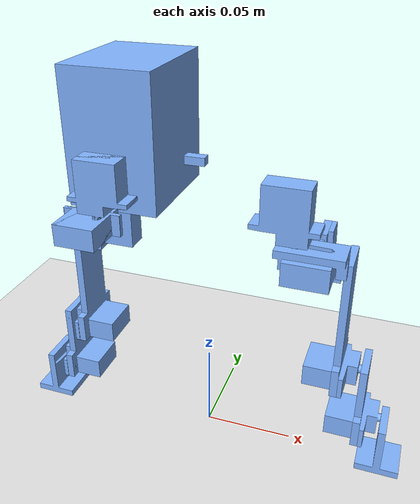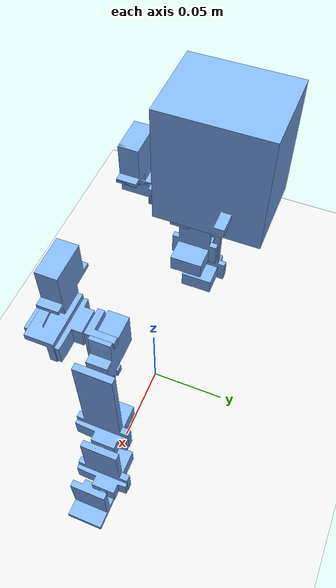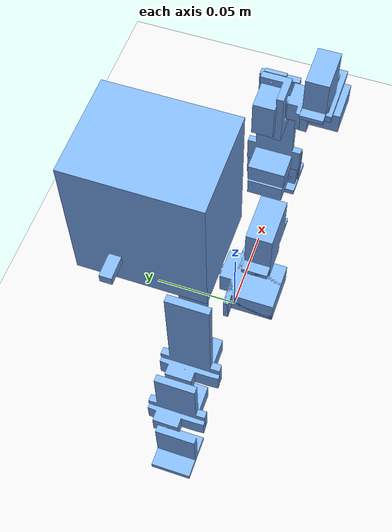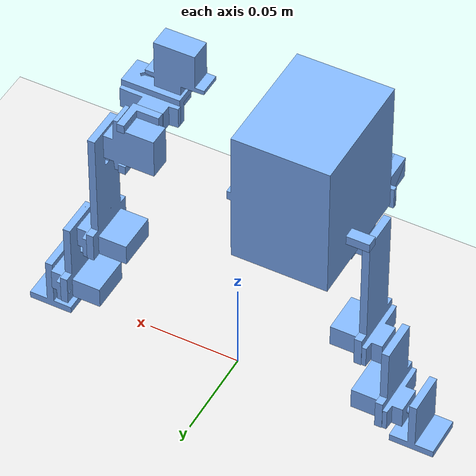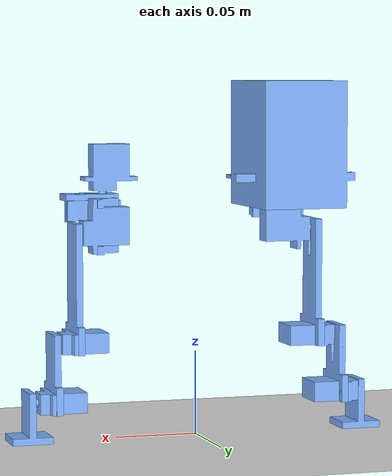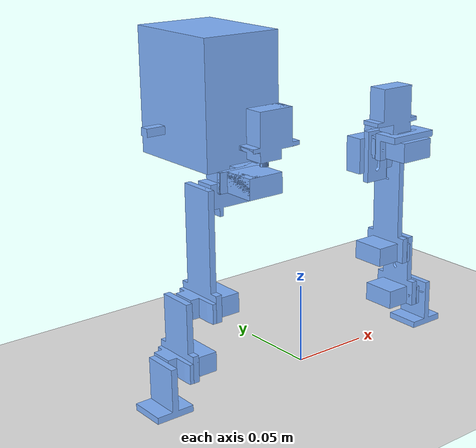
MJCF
<?xml version="1.0" ?>
<mujoco model="robotBothLegs_v28">
  <default>
    <mesh scale="0.001 0.001 0.001"/>
    <geom rgba="0.5 0.7 1.0 1"/>
    <joint damping="1"/>
    <position kp="14"/>
  </default>
  <asset>
    <mesh file="meshes/body_1.stl" name="body_1_mesh"/>
    <mesh file="meshes/robot_v5(Mirror)_1+servo_v1(Mirror)_1.stl" name="robot_v5(Mirror)_1+servo_v1(Mirror)_1_mesh"/>
    <mesh file="meshes/robot_v5(Mirror)_1+Motor_mount_v5(Mirror)_1+mount(Mirror)_1.stl" name="robot_v5(Mirror)_1+Motor_mount_v5(Mirror)_1+mount(Mirror)_1_mesh"/>
    <mesh file="meshes/robot_v5(Mirror)_1+servo_v1(Mirror)_2.stl" name="robot_v5(Mirror)_1+servo_v1(Mirror)_2_mesh"/>
    <mesh file="meshes/robot_v5(Mirror)_1+Motor_mount_v5(Mirror)_2+mount(Mirror)_1.stl" name="robot_v5(Mirror)_1+Motor_mount_v5(Mirror)_2+mount(Mirror)_1_mesh"/>
    <mesh file="meshes/robot_v5(Mirror)_1+servo_v1(Mirror)_3.stl" name="robot_v5(Mirror)_1+servo_v1(Mirror)_3_mesh"/>
    <mesh file="meshes/robot_v5(Mirror)_1+LegMount_v6(Mirror)_1.stl" name="robot_v5(Mirror)_1+LegMount_v6(Mirror)_1_mesh"/>
    <mesh file="meshes/robot_v5(Mirror)_1+servo_v1(Mirror)_4.stl" name="robot_v5(Mirror)_1+servo_v1(Mirror)_4_mesh"/>
    <mesh file="meshes/robot_v5(Mirror)_1+lowerLeg_v3(Mirror)_1.stl" name="robot_v5(Mirror)_1+lowerLeg_v3(Mirror)_1_mesh"/>
    <mesh file="meshes/robot_v5(Mirror)_1+servo_v1(Mirror)_5.stl" name="robot_v5(Mirror)_1+servo_v1(Mirror)_5_mesh"/>
    <mesh file="meshes/robot_v5(Mirror)_1+foot_v6(Mirror)_1.stl" name="robot_v5(Mirror)_1+foot_v6(Mirror)_1_mesh"/>
    <mesh file="meshes/left-leg_v10_1+servo_v2_1.stl" name="left-leg_v10_1+servo_v2_1_mesh"/>
    <mesh file="meshes/left-leg_v10_1+Motor_mount_v7_1+mount_1.stl" name="left-leg_v10_1+Motor_mount_v7_1+mount_1_mesh"/>
    <mesh file="meshes/left-leg_v10_1+servo_v2_2.stl" name="left-leg_v10_1+servo_v2_2_mesh"/>
    <mesh file="meshes/left-leg_v10_1+Motor_mount_v7_2+mount_1.stl" name="left-leg_v10_1+Motor_mount_v7_2+mount_1_mesh"/>
    <mesh file="meshes/left-leg_v10_1+servo_v2_3.stl" name="left-leg_v10_1+servo_v2_3_mesh"/>
    <mesh file="meshes/left-leg_v10_1+LegMount_v7_1.stl" name="left-leg_v10_1+LegMount_v7_1_mesh"/>
    <mesh file="meshes/left-leg_v10_1+servo_v2_4.stl" name="left-leg_v10_1+servo_v2_4_mesh"/>
    <mesh file="meshes/left-leg_v10_1+lowerLeg_v4_1.stl" name="left-leg_v10_1+lowerLeg_v4_1_mesh"/>
    <mesh file="meshes/left-leg_v10_1+servo_v2_5.stl" name="left-leg_v10_1+servo_v2_5_mesh"/>
    <mesh file="meshes/left-leg_v10_1+foot_v7_1.stl" name="left-leg_v10_1+foot_v7_1_mesh"/>
  </asset>
  <actuator>
    <position name="robot_v5(Mirror)_1+Motor_mount_v5(Mirror)_1+mount(Mirror)_1Revolute_1" joint="robot_v5(Mirror)_1+Motor_mount_v5(Mirror)_1+mount(Mirror)_1Revolute_1"/>
    <position name="robot_v5(Mirror)_1+Motor_mount_v5(Mirror)_2+mount(Mirror)_1Revolute_2" joint="robot_v5(Mirror)_1+Motor_mount_v5(Mirror)_2+mount(Mirror)_1Revolute_2"/>
    <position name="robot_v5(Mirror)_1+LegMount_v6(Mirror)_1Revolute_3" joint="robot_v5(Mirror)_1+LegMount_v6(Mirror)_1Revolute_3"/>
    <position name="robot_v5(Mirror)_1+lowerLeg_v3(Mirror)_1Revolute_4" joint="robot_v5(Mirror)_1+lowerLeg_v3(Mirror)_1Revolute_4"/>
    <position name="robot_v5(Mirror)_1+foot_v6(Mirror)_1Revolute_5" joint="robot_v5(Mirror)_1+foot_v6(Mirror)_1Revolute_5"/>
    <position name="left-leg_v10_1+Motor_mount_v7_1+mount_1Revolute_1" joint="left-leg_v10_1+Motor_mount_v7_1+mount_1Revolute_1"/>
    <position name="left-leg_v10_1+Motor_mount_v7_2+mount_1Revolute_3" joint="left-leg_v10_1+Motor_mount_v7_2+mount_1Revolute_3"/>
    <position name="left-leg_v10_1+LegMount_v7_1Revolute_5" joint="left-leg_v10_1+LegMount_v7_1Revolute_5"/>
    <position name="left-leg_v10_1+lowerLeg_v4_1Revolute_7" joint="left-leg_v10_1+lowerLeg_v4_1Revolute_7"/>
    <position name="left-leg_v10_1+foot_v7_1Revolute_9" joint="left-leg_v10_1+foot_v7_1Revolute_9"/>
  </actuator>
  <worldbody>
    <geom type="plane" size="1 1 0.1" rgba="0.9 0.9 0.9 1"/>
    <light mode="targetbodycom" target="body" diffuse=".8 .8 .8" specular="0.3 0.3 0.3" pos="0 -6 4" cutoff="30"/>
    <body name="body" pos="0 0 .17355">
      <freejoint name="root"/>
      <geom density="200" type="mesh" mesh="body_1_mesh"/>
      <body name="robot_v5(Mirror)_1+servo_v1(Mirror)_1">
        <geom type="mesh" mesh="robot_v5(Mirror)_1+servo_v1(Mirror)_1_mesh"/>
        <body name="robot_v5(Mirror)_1+Motor_mount_v5(Mirror)_1+mount(Mirror)_1">
          <joint axis="0 0 1" name="robot_v5(Mirror)_1+Motor_mount_v5(Mirror)_1+mount(Mirror)_1Revolute_1" type="hinge" pos="0.0500 -0.0275 -0.0320"/>
          <geom type="mesh" mesh="robot_v5(Mirror)_1+Motor_mount_v5(Mirror)_1+mount(Mirror)_1_mesh"/>
          <body name="robot_v5(Mirror)_1+servo_v1(Mirror)_2">
            <geom type="mesh" mesh="robot_v5(Mirror)_1+servo_v1(Mirror)_2_mesh"/>
            <body name="robot_v5(Mirror)_1+Motor_mount_v5(Mirror)_2+mount(Mirror)_1">
              <joint axis="0 1 0" name="robot_v5(Mirror)_1+Motor_mount_v5(Mirror)_2+mount(Mirror)_1Revolute_2" type="hinge" pos="0.0540 -0.0071 -0.0393"/>
              <geom type="mesh" mesh="robot_v5(Mirror)_1+Motor_mount_v5(Mirror)_2+mount(Mirror)_1_mesh"/>
              <body name="robot_v5(Mirror)_1+servo_v1(Mirror)_3">
                <geom type="mesh" mesh="robot_v5(Mirror)_1+servo_v1(Mirror)_3_mesh"/>
                <body name="robot_v5(Mirror)_1+LegMount_v6(Mirror)_1">
                  <joint axis="1 0 0" name="robot_v5(Mirror)_1+LegMount_v6(Mirror)_1Revolute_3" type="hinge" pos="0.0744 0.0002 -0.0512"/>
                  <geom type="mesh" mesh="robot_v5(Mirror)_1+LegMount_v6(Mirror)_1_mesh"/>
                  <body name="robot_v5(Mirror)_1+servo_v1(Mirror)_4">
                    <geom type="mesh" mesh="robot_v5(Mirror)_1+servo_v1(Mirror)_4_mesh"/>
                    <body name="robot_v5(Mirror)_1+lowerLeg_v3(Mirror)_1">
                      <joint axis="1 0 0" name="robot_v5(Mirror)_1+lowerLeg_v3(Mirror)_1Revolute_4" type="hinge" pos="0.0885 0.0039 -0.1154"/>
                      <geom type="mesh" mesh="robot_v5(Mirror)_1+lowerLeg_v3(Mirror)_1_mesh"/>
                      <body name="robot_v5(Mirror)_1+servo_v1(Mirror)_5">
                        <geom type="mesh" mesh="robot_v5(Mirror)_1+servo_v1(Mirror)_5_mesh"/>
                        <body name="robot_v5(Mirror)_1+foot_v6(Mirror)_1">
                          <joint axis="1 0 0" name="robot_v5(Mirror)_1+foot_v6(Mirror)_1Revolute_5" type="hinge" pos="0.1026 0.0077 -0.1496"/>
                          <geom type="mesh" mesh="robot_v5(Mirror)_1+foot_v6(Mirror)_1_mesh"/>
                        </body>
                      </body>
                    </body>
                  </body>
                </body>
              </body>
            </body>
          </body>
        </body>
      </body>
      <body name="left-leg_v10_1+servo_v2_1">
        <geom type="mesh" mesh="left-leg_v10_1+servo_v2_1_mesh"/>
        <body name="left-leg_v10_1+Motor_mount_v7_1+mount_1">
          <joint axis="0 0 1" name="left-leg_v10_1+Motor_mount_v7_1+mount_1Revolute_1" type="hinge" pos="-0.0500 -0.0275 -0.0320"/>
          <geom type="mesh" mesh="left-leg_v10_1+Motor_mount_v7_1+mount_1_mesh"/>
          <body name="left-leg_v10_1+servo_v2_2">
            <geom type="mesh" mesh="left-leg_v10_1+servo_v2_2_mesh"/>
            <body name="left-leg_v10_1+Motor_mount_v7_2+mount_1">
              <joint axis="0 1 0" name="left-leg_v10_1+Motor_mount_v7_2+mount_1Revolute_3" type="hinge" pos="-0.0540 -0.0071 -0.0393"/>
              <geom type="mesh" mesh="left-leg_v10_1+Motor_mount_v7_2+mount_1_mesh"/>
              <body name="left-leg_v10_1+servo_v2_3">
                <geom type="mesh" mesh="left-leg_v10_1+servo_v2_3_mesh"/>
                <body name="left-leg_v10_1+LegMount_v7_1">
                  <joint axis="1 0 0" name="left-leg_v10_1+LegMount_v7_1Revolute_5" type="hinge" pos="-0.0744 0.0002 -0.0512"/>
                  <geom type="mesh" mesh="left-leg_v10_1+LegMount_v7_1_mesh"/>
                  <body name="left-leg_v10_1+servo_v2_4">
                    <geom type="mesh" mesh="left-leg_v10_1+servo_v2_4_mesh"/>
                    <body name="left-leg_v10_1+lowerLeg_v4_1">
                      <joint axis="1 0 0" name="left-leg_v10_1+lowerLeg_v4_1Revolute_7" type="hinge" pos="-0.0885 0.0039 -0.1154"/>
                      <geom type="mesh" mesh="left-leg_v10_1+lowerLeg_v4_1_mesh"/>
                      <body name="left-leg_v10_1+servo_v2_5">
                        <geom type="mesh" mesh="left-leg_v10_1+servo_v2_5_mesh"/>
                        <body name="left-leg_v10_1+foot_v7_1">
                          <joint axis="1 0 0" name="left-leg_v10_1+foot_v7_1Revolute_9" type="hinge" pos="-0.1026 0.0077 -0.1496"/>
                          <geom type="mesh" mesh="left-leg_v10_1+foot_v7_1_mesh"/>
                        </body>
                      </body>
                    </body>
                  </body>
                </body>
              </body>
            </body>
          </body>
        </body>
      </body>
    </body>
  </worldbody>
</mujoco>
